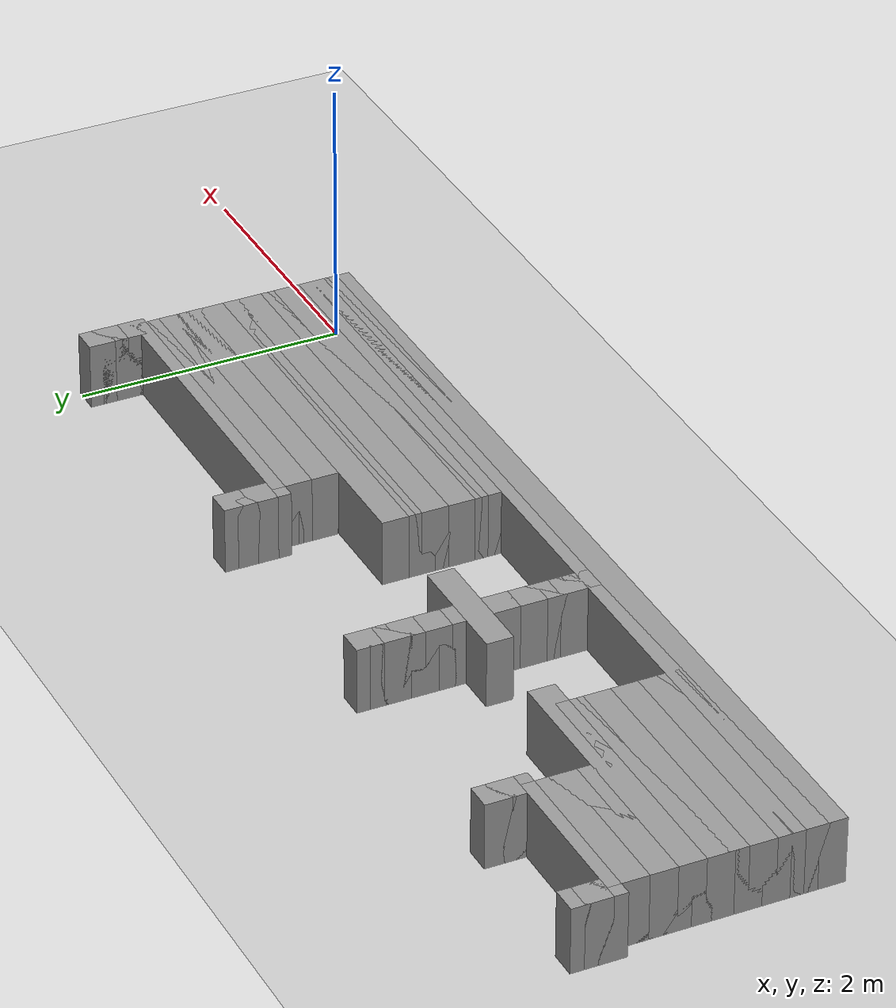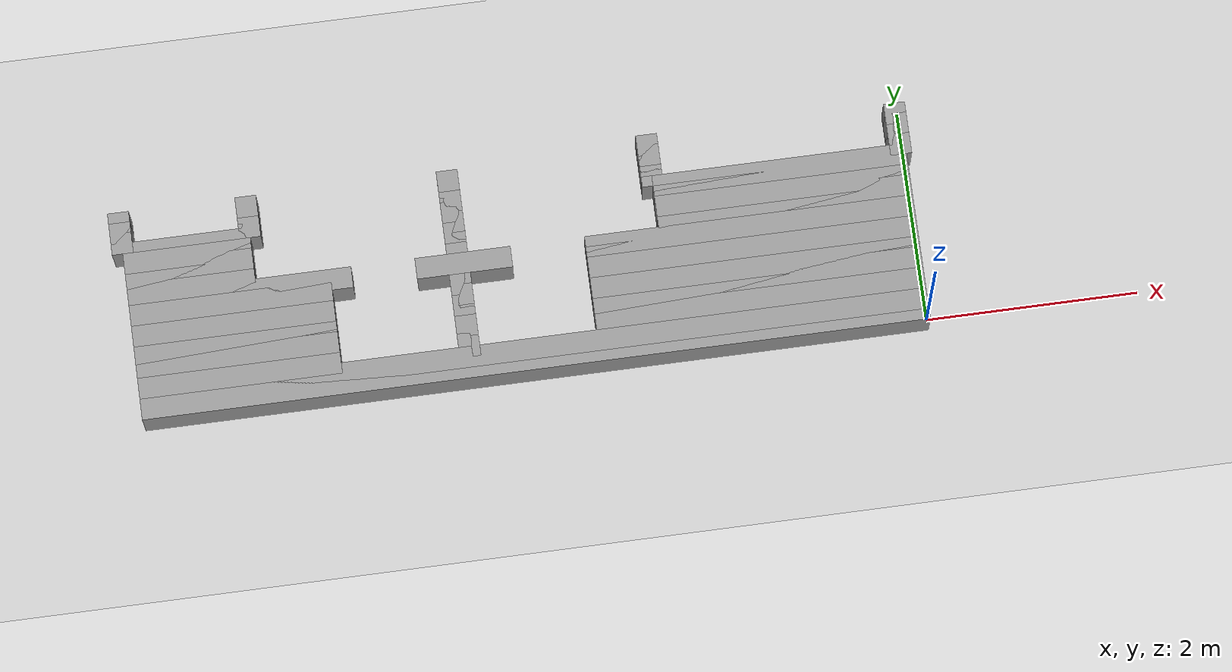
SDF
<sdf version="1.6">
 <world name="GridMap">
  <include><uri>model://sun</uri></include>
  <include><uri>model://ground_plane</uri></include>
  <model name="GridMap">
   <link name="Wall_(37.0,0.0)">
    <collision name="Wall_(37.0,0.0)_Collision">
     <geometry><box><size>7.4 0.2 0.5</size></box></geometry>
     <pose>-3.7 0.0 0.25 0 -0 0</pose>
    </collision>
    <inertial>
     <mass>0.5</mass>
     <pose>0 0.01 0 0 0 0</pose>
     <inertia><ixx>0.004</ixx><ixy>0.001</ixy><ixz>0</ixz><iyy>0.006</iyy><iyz>0</iyz><izz>0.007</izz></inertia>
    </inertial>
    <visual name="Wall_(37.0,0.0)_Visual">
     <geometry><box><size>7.4 0.2 0.5</size></box></geometry>
     <pose>-3.7 0.0 0.25 0 -0 0</pose>
     <material>
      <script><uri>file://media/materials/scripts/gazebo.material</uri><name>Gazebo/Grey</name></script>
      <ambient>1 1 1 1</ambient>
     </material>
     <meta><layer>0</layer></meta>
    </visual>
   </link>
   <link name="Wall_(37.0,1.0)">
    <collision name="Wall_(37.0,1.0)_Collision">
     <geometry><box><size>7.4 0.2 0.5</size></box></geometry>
     <pose>-3.7 0.1 0.25 0 -0 0</pose>
    </collision>
    <inertial>
     <mass>0.5</mass>
     <pose>0 0.01 0 0 0 0</pose>
     <inertia><ixx>0.004</ixx><ixy>0.001</ixy><ixz>0</ixz><iyy>0.006</iyy><iyz>0</iyz><izz>0.007</izz></inertia>
    </inertial>
    <visual name="Wall_(37.0,1.0)_Visual">
     <geometry><box><size>7.4 0.2 0.5</size></box></geometry>
     <pose>-3.7 0.1 0.25 0 -0 0</pose>
     <material>
      <script><uri>file://media/materials/scripts/gazebo.material</uri><name>Gazebo/Grey</name></script>
      <ambient>1 1 1 1</ambient>
     </material>
     <meta><layer>0</layer></meta>
    </visual>
   </link>
   <link name="Wall_(15.5,2.0)">
    <collision name="Wall_(15.5,2.0)_Collision">
     <geometry><box><size>3.1 0.2 0.5</size></box></geometry>
     <pose>-1.55 0.2 0.25 0 -0 0</pose>
    </collision>
    <inertial>
     <mass>0.5</mass>
     <pose>0 0.01 0 0 0 0</pose>
     <inertia><ixx>0.004</ixx><ixy>0.001</ixy><ixz>0</ixz><iyy>0.006</iyy><iyz>0</iyz><izz>0.007</izz></inertia>
    </inertial>
    <visual name="Wall_(15.5,2.0)_Visual">
     <geometry><box><size>3.1 0.2 0.5</size></box></geometry>
     <pose>-1.55 0.2 0.25 0 -0 0</pose>
     <material>
      <script><uri>file://media/materials/scripts/gazebo.material</uri><name>Gazebo/Grey</name></script>
      <ambient>1 1 1 1</ambient>
     </material>
     <meta><layer>0</layer></meta>
    </visual>
   </link>
   <link name="Wall_(43.0,2.0)">
    <collision name="Wall_(43.0,2.0)_Collision">
     <geometry><box><size>0.2 0.2 0.5</size></box></geometry>
     <pose>-4.3 0.2 0.25 0 -0 0</pose>
    </collision>
    <inertial>
     <mass>0.5</mass>
     <pose>0 0.01 0 0 0 0</pose>
     <inertia><ixx>0.004</ixx><ixy>0.001</ixy><ixz>0</ixz><iyy>0.006</iyy><iyz>0</iyz><izz>0.007</izz></inertia>
    </inertial>
    <visual name="Wall_(43.0,2.0)_Visual">
     <geometry><box><size>0.2 0.2 0.5</size></box></geometry>
     <pose>-4.3 0.2 0.25 0 -0 0</pose>
     <material>
      <script><uri>file://media/materials/scripts/gazebo.material</uri><name>Gazebo/Grey</name></script>
      <ambient>1 1 1 1</ambient>
     </material>
     <meta><layer>0</layer></meta>
    </visual>
   </link>
   <link name="Wall_(64.5,2.0)">
    <collision name="Wall_(64.5,2.0)_Collision">
     <geometry><box><size>1.9000000000000001 0.2 0.5</size></box></geometry>
     <pose>-6.45 0.2 0.25 0 -0 0</pose>
    </collision>
    <inertial>
     <mass>0.5</mass>
     <pose>0 0.01 0 0 0 0</pose>
     <inertia><ixx>0.004</ixx><ixy>0.001</ixy><ixz>0</ixz><iyy>0.006</iyy><iyz>0</iyz><izz>0.007</izz></inertia>
    </inertial>
    <visual name="Wall_(64.5,2.0)_Visual">
     <geometry><box><size>1.9000000000000001 0.2 0.5</size></box></geometry>
     <pose>-6.45 0.2 0.25 0 -0 0</pose>
     <material>
      <script><uri>file://media/materials/scripts/gazebo.material</uri><name>Gazebo/Grey</name></script>
      <ambient>1 1 1 1</ambient>
     </material>
     <meta><layer>0</layer></meta>
    </visual>
   </link>
   <link name="Wall_(15.5,3.0)">
    <collision name="Wall_(15.5,3.0)_Collision">
     <geometry><box><size>3.1 0.2 0.5</size></box></geometry>
     <pose>-1.55 0.30000000000000004 0.25 0 -0 0</pose>
    </collision>
    <inertial>
     <mass>0.5</mass>
     <pose>0 0.01 0 0 0 0</pose>
     <inertia><ixx>0.004</ixx><ixy>0.001</ixy><ixz>0</ixz><iyy>0.006</iyy><iyz>0</iyz><izz>0.007</izz></inertia>
    </inertial>
    <visual name="Wall_(15.5,3.0)_Visual">
     <geometry><box><size>3.1 0.2 0.5</size></box></geometry>
     <pose>-1.55 0.30000000000000004 0.25 0 -0 0</pose>
     <material>
      <script><uri>file://media/materials/scripts/gazebo.material</uri><name>Gazebo/Grey</name></script>
      <ambient>1 1 1 1</ambient>
     </material>
     <meta><layer>0</layer></meta>
    </visual>
   </link>
   <link name="Wall_(43.0,3.0)">
    <collision name="Wall_(43.0,3.0)_Collision">
     <geometry><box><size>0.2 0.2 0.5</size></box></geometry>
     <pose>-4.3 0.30000000000000004 0.25 0 -0 0</pose>
    </collision>
    <inertial>
     <mass>0.5</mass>
     <pose>0 0.01 0 0 0 0</pose>
     <inertia><ixx>0.004</ixx><ixy>0.001</ixy><ixz>0</ixz><iyy>0.006</iyy><iyz>0</iyz><izz>0.007</izz></inertia>
    </inertial>
    <visual name="Wall_(43.0,3.0)_Visual">
     <geometry><box><size>0.2 0.2 0.5</size></box></geometry>
     <pose>-4.3 0.30000000000000004 0.25 0 -0 0</pose>
     <material>
      <script><uri>file://media/materials/scripts/gazebo.material</uri><name>Gazebo/Grey</name></script>
      <ambient>1 1 1 1</ambient>
     </material>
     <meta><layer>0</layer></meta>
    </visual>
   </link>
   <link name="Wall_(64.5,3.0)">
    <collision name="Wall_(64.5,3.0)_Collision">
     <geometry><box><size>1.9000000000000001 0.2 0.5</size></box></geometry>
     <pose>-6.45 0.30000000000000004 0.25 0 -0 0</pose>
    </collision>
    <inertial>
     <mass>0.5</mass>
     <pose>0 0.01 0 0 0 0</pose>
     <inertia><ixx>0.004</ixx><ixy>0.001</ixy><ixz>0</ixz><iyy>0.006</iyy><iyz>0</iyz><izz>0.007</izz></inertia>
    </inertial>
    <visual name="Wall_(64.5,3.0)_Visual">
     <geometry><box><size>1.9000000000000001 0.2 0.5</size></box></geometry>
     <pose>-6.45 0.30000000000000004 0.25 0 -0 0</pose>
     <material>
      <script><uri>file://media/materials/scripts/gazebo.material</uri><name>Gazebo/Grey</name></script>
      <ambient>1 1 1 1</ambient>
     </material>
     <meta><layer>0</layer></meta>
    </visual>
   </link>
   <link name="Wall_(15.5,4.0)">
    <collision name="Wall_(15.5,4.0)_Collision">
     <geometry><box><size>3.1 0.2 0.5</size></box></geometry>
     <pose>-1.55 0.4 0.25 0 -0 0</pose>
    </collision>
    <inertial>
     <mass>0.5</mass>
     <pose>0 0.01 0 0 0 0</pose>
     <inertia><ixx>0.004</ixx><ixy>0.001</ixy><ixz>0</ixz><iyy>0.006</iyy><iyz>0</iyz><izz>0.007</izz></inertia>
    </inertial>
    <visual name="Wall_(15.5,4.0)_Visual">
     <geometry><box><size>3.1 0.2 0.5</size></box></geometry>
     <pose>-1.55 0.4 0.25 0 -0 0</pose>
     <material>
      <script><uri>file://media/materials/scripts/gazebo.material</uri><name>Gazebo/Grey</name></script>
      <ambient>1 1 1 1</ambient>
     </material>
     <meta><layer>0</layer></meta>
    </visual>
   </link>
   <link name="Wall_(43.0,4.0)">
    <collision name="Wall_(43.0,4.0)_Collision">
     <geometry><box><size>0.2 0.2 0.5</size></box></geometry>
     <pose>-4.3 0.4 0.25 0 -0 0</pose>
    </collision>
    <inertial>
     <mass>0.5</mass>
     <pose>0 0.01 0 0 0 0</pose>
     <inertia><ixx>0.004</ixx><ixy>0.001</ixy><ixz>0</ixz><iyy>0.006</iyy><iyz>0</iyz><izz>0.007</izz></inertia>
    </inertial>
    <visual name="Wall_(43.0,4.0)_Visual">
     <geometry><box><size>0.2 0.2 0.5</size></box></geometry>
     <pose>-4.3 0.4 0.25 0 -0 0</pose>
     <material>
      <script><uri>file://media/materials/scripts/gazebo.material</uri><name>Gazebo/Grey</name></script>
      <ambient>1 1 1 1</ambient>
     </material>
     <meta><layer>0</layer></meta>
    </visual>
   </link>
   <link name="Wall_(64.5,4.0)">
    <collision name="Wall_(64.5,4.0)_Collision">
     <geometry><box><size>1.9000000000000001 0.2 0.5</size></box></geometry>
     <pose>-6.45 0.4 0.25 0 -0 0</pose>
    </collision>
    <inertial>
     <mass>0.5</mass>
     <pose>0 0.01 0 0 0 0</pose>
     <inertia><ixx>0.004</ixx><ixy>0.001</ixy><ixz>0</ixz><iyy>0.006</iyy><iyz>0</iyz><izz>0.007</izz></inertia>
    </inertial>
    <visual name="Wall_(64.5,4.0)_Visual">
     <geometry><box><size>1.9000000000000001 0.2 0.5</size></box></geometry>
     <pose>-6.45 0.4 0.25 0 -0 0</pose>
     <material>
      <script><uri>file://media/materials/scripts/gazebo.material</uri><name>Gazebo/Grey</name></script>
      <ambient>1 1 1 1</ambient>
     </material>
     <meta><layer>0</layer></meta>
    </visual>
   </link>
   <link name="Wall_(15.5,5.0)">
    <collision name="Wall_(15.5,5.0)_Collision">
     <geometry><box><size>3.1 0.2 0.5</size></box></geometry>
     <pose>-1.55 0.5 0.25 0 -0 0</pose>
    </collision>
    <inertial>
     <mass>0.5</mass>
     <pose>0 0.01 0 0 0 0</pose>
     <inertia><ixx>0.004</ixx><ixy>0.001</ixy><ixz>0</ixz><iyy>0.006</iyy><iyz>0</iyz><izz>0.007</izz></inertia>
    </inertial>
    <visual name="Wall_(15.5,5.0)_Visual">
     <geometry><box><size>3.1 0.2 0.5</size></box></geometry>
     <pose>-1.55 0.5 0.25 0 -0 0</pose>
     <material>
      <script><uri>file://media/materials/scripts/gazebo.material</uri><name>Gazebo/Grey</name></script>
      <ambient>1 1 1 1</ambient>
     </material>
     <meta><layer>0</layer></meta>
    </visual>
   </link>
   <link name="Wall_(43.0,5.0)">
    <collision name="Wall_(43.0,5.0)_Collision">
     <geometry><box><size>0.2 0.2 0.5</size></box></geometry>
     <pose>-4.3 0.5 0.25 0 -0 0</pose>
    </collision>
    <inertial>
     <mass>0.5</mass>
     <pose>0 0.01 0 0 0 0</pose>
     <inertia><ixx>0.004</ixx><ixy>0.001</ixy><ixz>0</ixz><iyy>0.006</iyy><iyz>0</iyz><izz>0.007</izz></inertia>
    </inertial>
    <visual name="Wall_(43.0,5.0)_Visual">
     <geometry><box><size>0.2 0.2 0.5</size></box></geometry>
     <pose>-4.3 0.5 0.25 0 -0 0</pose>
     <material>
      <script><uri>file://media/materials/scripts/gazebo.material</uri><name>Gazebo/Grey</name></script>
      <ambient>1 1 1 1</ambient>
     </material>
     <meta><layer>0</layer></meta>
    </visual>
   </link>
   <link name="Wall_(64.5,5.0)">
    <collision name="Wall_(64.5,5.0)_Collision">
     <geometry><box><size>1.9000000000000001 0.2 0.5</size></box></geometry>
     <pose>-6.45 0.5 0.25 0 -0 0</pose>
    </collision>
    <inertial>
     <mass>0.5</mass>
     <pose>0 0.01 0 0 0 0</pose>
     <inertia><ixx>0.004</ixx><ixy>0.001</ixy><ixz>0</ixz><iyy>0.006</iyy><iyz>0</iyz><izz>0.007</izz></inertia>
    </inertial>
    <visual name="Wall_(64.5,5.0)_Visual">
     <geometry><box><size>1.9000000000000001 0.2 0.5</size></box></geometry>
     <pose>-6.45 0.5 0.25 0 -0 0</pose>
     <material>
      <script><uri>file://media/materials/scripts/gazebo.material</uri><name>Gazebo/Grey</name></script>
      <ambient>1 1 1 1</ambient>
     </material>
     <meta><layer>0</layer></meta>
    </visual>
   </link>
   <link name="Wall_(15.5,6.0)">
    <collision name="Wall_(15.5,6.0)_Collision">
     <geometry><box><size>3.1 0.2 0.5</size></box></geometry>
     <pose>-1.55 0.6000000000000001 0.25 0 -0 0</pose>
    </collision>
    <inertial>
     <mass>0.5</mass>
     <pose>0 0.01 0 0 0 0</pose>
     <inertia><ixx>0.004</ixx><ixy>0.001</ixy><ixz>0</ixz><iyy>0.006</iyy><iyz>0</iyz><izz>0.007</izz></inertia>
    </inertial>
    <visual name="Wall_(15.5,6.0)_Visual">
     <geometry><box><size>3.1 0.2 0.5</size></box></geometry>
     <pose>-1.55 0.6000000000000001 0.25 0 -0 0</pose>
     <material>
      <script><uri>file://media/materials/scripts/gazebo.material</uri><name>Gazebo/Grey</name></script>
      <ambient>1 1 1 1</ambient>
     </material>
     <meta><layer>0</layer></meta>
    </visual>
   </link>
   <link name="Wall_(43.0,6.0)">
    <collision name="Wall_(43.0,6.0)_Collision">
     <geometry><box><size>0.2 0.2 0.5</size></box></geometry>
     <pose>-4.3 0.6000000000000001 0.25 0 -0 0</pose>
    </collision>
    <inertial>
     <mass>0.5</mass>
     <pose>0 0.01 0 0 0 0</pose>
     <inertia><ixx>0.004</ixx><ixy>0.001</ixy><ixz>0</ixz><iyy>0.006</iyy><iyz>0</iyz><izz>0.007</izz></inertia>
    </inertial>
    <visual name="Wall_(43.0,6.0)_Visual">
     <geometry><box><size>0.2 0.2 0.5</size></box></geometry>
     <pose>-4.3 0.6000000000000001 0.25 0 -0 0</pose>
     <material>
      <script><uri>file://media/materials/scripts/gazebo.material</uri><name>Gazebo/Grey</name></script>
      <ambient>1 1 1 1</ambient>
     </material>
     <meta><layer>0</layer></meta>
    </visual>
   </link>
   <link name="Wall_(64.5,6.0)">
    <collision name="Wall_(64.5,6.0)_Collision">
     <geometry><box><size>1.9000000000000001 0.2 0.5</size></box></geometry>
     <pose>-6.45 0.6000000000000001 0.25 0 -0 0</pose>
    </collision>
    <inertial>
     <mass>0.5</mass>
     <pose>0 0.01 0 0 0 0</pose>
     <inertia><ixx>0.004</ixx><ixy>0.001</ixy><ixz>0</ixz><iyy>0.006</iyy><iyz>0</iyz><izz>0.007</izz></inertia>
    </inertial>
    <visual name="Wall_(64.5,6.0)_Visual">
     <geometry><box><size>1.9000000000000001 0.2 0.5</size></box></geometry>
     <pose>-6.45 0.6000000000000001 0.25 0 -0 0</pose>
     <material>
      <script><uri>file://media/materials/scripts/gazebo.material</uri><name>Gazebo/Grey</name></script>
      <ambient>1 1 1 1</ambient>
     </material>
     <meta><layer>0</layer></meta>
    </visual>
   </link>
   <link name="Wall_(15.5,7.0)">
    <collision name="Wall_(15.5,7.0)_Collision">
     <geometry><box><size>3.1 0.2 0.5</size></box></geometry>
     <pose>-1.55 0.7000000000000001 0.25 0 -0 0</pose>
    </collision>
    <inertial>
     <mass>0.5</mass>
     <pose>0 0.01 0 0 0 0</pose>
     <inertia><ixx>0.004</ixx><ixy>0.001</ixy><ixz>0</ixz><iyy>0.006</iyy><iyz>0</iyz><izz>0.007</izz></inertia>
    </inertial>
    <visual name="Wall_(15.5,7.0)_Visual">
     <geometry><box><size>3.1 0.2 0.5</size></box></geometry>
     <pose>-1.55 0.7000000000000001 0.25 0 -0 0</pose>
     <material>
      <script><uri>file://media/materials/scripts/gazebo.material</uri><name>Gazebo/Grey</name></script>
      <ambient>1 1 1 1</ambient>
     </material>
     <meta><layer>0</layer></meta>
    </visual>
   </link>
   <link name="Wall_(43.0,7.0)">
    <collision name="Wall_(43.0,7.0)_Collision">
     <geometry><box><size>0.2 0.2 0.5</size></box></geometry>
     <pose>-4.3 0.7000000000000001 0.25 0 -0 0</pose>
    </collision>
    <inertial>
     <mass>0.5</mass>
     <pose>0 0.01 0 0 0 0</pose>
     <inertia><ixx>0.004</ixx><ixy>0.001</ixy><ixz>0</ixz><iyy>0.006</iyy><iyz>0</iyz><izz>0.007</izz></inertia>
    </inertial>
    <visual name="Wall_(43.0,7.0)_Visual">
     <geometry><box><size>0.2 0.2 0.5</size></box></geometry>
     <pose>-4.3 0.7000000000000001 0.25 0 -0 0</pose>
     <material>
      <script><uri>file://media/materials/scripts/gazebo.material</uri><name>Gazebo/Grey</name></script>
      <ambient>1 1 1 1</ambient>
     </material>
     <meta><layer>0</layer></meta>
    </visual>
   </link>
   <link name="Wall_(64.5,7.0)">
    <collision name="Wall_(64.5,7.0)_Collision">
     <geometry><box><size>1.9000000000000001 0.2 0.5</size></box></geometry>
     <pose>-6.45 0.7000000000000001 0.25 0 -0 0</pose>
    </collision>
    <inertial>
     <mass>0.5</mass>
     <pose>0 0.01 0 0 0 0</pose>
     <inertia><ixx>0.004</ixx><ixy>0.001</ixy><ixz>0</ixz><iyy>0.006</iyy><iyz>0</iyz><izz>0.007</izz></inertia>
    </inertial>
    <visual name="Wall_(64.5,7.0)_Visual">
     <geometry><box><size>1.9000000000000001 0.2 0.5</size></box></geometry>
     <pose>-6.45 0.7000000000000001 0.25 0 -0 0</pose>
     <material>
      <script><uri>file://media/materials/scripts/gazebo.material</uri><name>Gazebo/Grey</name></script>
      <ambient>1 1 1 1</ambient>
     </material>
     <meta><layer>0</layer></meta>
    </visual>
   </link>
   <link name="Wall_(15.5,8.0)">
    <collision name="Wall_(15.5,8.0)_Collision">
     <geometry><box><size>3.1 0.2 0.5</size></box></geometry>
     <pose>-1.55 0.8 0.25 0 -0 0</pose>
    </collision>
    <inertial>
     <mass>0.5</mass>
     <pose>0 0.01 0 0 0 0</pose>
     <inertia><ixx>0.004</ixx><ixy>0.001</ixy><ixz>0</ixz><iyy>0.006</iyy><iyz>0</iyz><izz>0.007</izz></inertia>
    </inertial>
    <visual name="Wall_(15.5,8.0)_Visual">
     <geometry><box><size>3.1 0.2 0.5</size></box></geometry>
     <pose>-1.55 0.8 0.25 0 -0 0</pose>
     <material>
      <script><uri>file://media/materials/scripts/gazebo.material</uri><name>Gazebo/Grey</name></script>
      <ambient>1 1 1 1</ambient>
     </material>
     <meta><layer>0</layer></meta>
    </visual>
   </link>
   <link name="Wall_(43.0,8.0)">
    <collision name="Wall_(43.0,8.0)_Collision">
     <geometry><box><size>0.2 0.2 0.5</size></box></geometry>
     <pose>-4.3 0.8 0.25 0 -0 0</pose>
    </collision>
    <inertial>
     <mass>0.5</mass>
     <pose>0 0.01 0 0 0 0</pose>
     <inertia><ixx>0.004</ixx><ixy>0.001</ixy><ixz>0</ixz><iyy>0.006</iyy><iyz>0</iyz><izz>0.007</izz></inertia>
    </inertial>
    <visual name="Wall_(43.0,8.0)_Visual">
     <geometry><box><size>0.2 0.2 0.5</size></box></geometry>
     <pose>-4.3 0.8 0.25 0 -0 0</pose>
     <material>
      <script><uri>file://media/materials/scripts/gazebo.material</uri><name>Gazebo/Grey</name></script>
      <ambient>1 1 1 1</ambient>
     </material>
     <meta><layer>0</layer></meta>
    </visual>
   </link>
   <link name="Wall_(64.5,8.0)">
    <collision name="Wall_(64.5,8.0)_Collision">
     <geometry><box><size>1.9000000000000001 0.2 0.5</size></box></geometry>
     <pose>-6.45 0.8 0.25 0 -0 0</pose>
    </collision>
    <inertial>
     <mass>0.5</mass>
     <pose>0 0.01 0 0 0 0</pose>
     <inertia><ixx>0.004</ixx><ixy>0.001</ixy><ixz>0</ixz><iyy>0.006</iyy><iyz>0</iyz><izz>0.007</izz></inertia>
    </inertial>
    <visual name="Wall_(64.5,8.0)_Visual">
     <geometry><box><size>1.9000000000000001 0.2 0.5</size></box></geometry>
     <pose>-6.45 0.8 0.25 0 -0 0</pose>
     <material>
      <script><uri>file://media/materials/scripts/gazebo.material</uri><name>Gazebo/Grey</name></script>
      <ambient>1 1 1 1</ambient>
     </material>
     <meta><layer>0</layer></meta>
    </visual>
   </link>
   <link name="Wall_(15.5,9.0)">
    <collision name="Wall_(15.5,9.0)_Collision">
     <geometry><box><size>3.1 0.2 0.5</size></box></geometry>
     <pose>-1.55 0.9 0.25 0 -0 0</pose>
    </collision>
    <inertial>
     <mass>0.5</mass>
     <pose>0 0.01 0 0 0 0</pose>
     <inertia><ixx>0.004</ixx><ixy>0.001</ixy><ixz>0</ixz><iyy>0.006</iyy><iyz>0</iyz><izz>0.007</izz></inertia>
    </inertial>
    <visual name="Wall_(15.5,9.0)_Visual">
     <geometry><box><size>3.1 0.2 0.5</size></box></geometry>
     <pose>-1.55 0.9 0.25 0 -0 0</pose>
     <material>
      <script><uri>file://media/materials/scripts/gazebo.material</uri><name>Gazebo/Grey</name></script>
      <ambient>1 1 1 1</ambient>
     </material>
     <meta><layer>0</layer></meta>
    </visual>
   </link>
   <link name="Wall_(43.0,9.0)">
    <collision name="Wall_(43.0,9.0)_Collision">
     <geometry><box><size>0.2 0.2 0.5</size></box></geometry>
     <pose>-4.3 0.9 0.25 0 -0 0</pose>
    </collision>
    <inertial>
     <mass>0.5</mass>
     <pose>0 0.01 0 0 0 0</pose>
     <inertia><ixx>0.004</ixx><ixy>0.001</ixy><ixz>0</ixz><iyy>0.006</iyy><iyz>0</iyz><izz>0.007</izz></inertia>
    </inertial>
    <visual name="Wall_(43.0,9.0)_Visual">
     <geometry><box><size>0.2 0.2 0.5</size></box></geometry>
     <pose>-4.3 0.9 0.25 0 -0 0</pose>
     <material>
      <script><uri>file://media/materials/scripts/gazebo.material</uri><name>Gazebo/Grey</name></script>
      <ambient>1 1 1 1</ambient>
     </material>
     <meta><layer>0</layer></meta>
    </visual>
   </link>
   <link name="Wall_(64.5,9.0)">
    <collision name="Wall_(64.5,9.0)_Collision">
     <geometry><box><size>1.9000000000000001 0.2 0.5</size></box></geometry>
     <pose>-6.45 0.9 0.25 0 -0 0</pose>
    </collision>
    <inertial>
     <mass>0.5</mass>
     <pose>0 0.01 0 0 0 0</pose>
     <inertia><ixx>0.004</ixx><ixy>0.001</ixy><ixz>0</ixz><iyy>0.006</iyy><iyz>0</iyz><izz>0.007</izz></inertia>
    </inertial>
    <visual name="Wall_(64.5,9.0)_Visual">
     <geometry><box><size>1.9000000000000001 0.2 0.5</size></box></geometry>
     <pose>-6.45 0.9 0.25 0 -0 0</pose>
     <material>
      <script><uri>file://media/materials/scripts/gazebo.material</uri><name>Gazebo/Grey</name></script>
      <ambient>1 1 1 1</ambient>
     </material>
     <meta><layer>0</layer></meta>
    </visual>
   </link>
   <link name="Wall_(15.5,10.0)">
    <collision name="Wall_(15.5,10.0)_Collision">
     <geometry><box><size>3.1 0.2 0.5</size></box></geometry>
     <pose>-1.55 1.0 0.25 0 -0 0</pose>
    </collision>
    <inertial>
     <mass>0.5</mass>
     <pose>0 0.01 0 0 0 0</pose>
     <inertia><ixx>0.004</ixx><ixy>0.001</ixy><ixz>0</ixz><iyy>0.006</iyy><iyz>0</iyz><izz>0.007</izz></inertia>
    </inertial>
    <visual name="Wall_(15.5,10.0)_Visual">
     <geometry><box><size>3.1 0.2 0.5</size></box></geometry>
     <pose>-1.55 1.0 0.25 0 -0 0</pose>
     <material>
      <script><uri>file://media/materials/scripts/gazebo.material</uri><name>Gazebo/Grey</name></script>
      <ambient>1 1 1 1</ambient>
     </material>
     <meta><layer>0</layer></meta>
    </visual>
   </link>
   <link name="Wall_(42.5,10.0)">
    <collision name="Wall_(42.5,10.0)_Collision">
     <geometry><box><size>0.9 0.2 0.5</size></box></geometry>
     <pose>-4.25 1.0 0.25 0 -0 0</pose>
    </collision>
    <inertial>
     <mass>0.5</mass>
     <pose>0 0.01 0 0 0 0</pose>
     <inertia><ixx>0.004</ixx><ixy>0.001</ixy><ixz>0</ixz><iyy>0.006</iyy><iyz>0</iyz><izz>0.007</izz></inertia>
    </inertial>
    <visual name="Wall_(42.5,10.0)_Visual">
     <geometry><box><size>0.9 0.2 0.5</size></box></geometry>
     <pose>-4.25 1.0 0.25 0 -0 0</pose>
     <material>
      <script><uri>file://media/materials/scripts/gazebo.material</uri><name>Gazebo/Grey</name></script>
      <ambient>1 1 1 1</ambient>
     </material>
     <meta><layer>0</layer></meta>
    </visual>
   </link>
   <link name="Wall_(63.5,10.0)">
    <collision name="Wall_(63.5,10.0)_Collision">
     <geometry><box><size>2.1 0.2 0.5</size></box></geometry>
     <pose>-6.3500000000000005 1.0 0.25 0 -0 0</pose>
    </collision>
    <inertial>
     <mass>0.5</mass>
     <pose>0 0.01 0 0 0 0</pose>
     <inertia><ixx>0.004</ixx><ixy>0.001</ixy><ixz>0</ixz><iyy>0.006</iyy><iyz>0</iyz><izz>0.007</izz></inertia>
    </inertial>
    <visual name="Wall_(63.5,10.0)_Visual">
     <geometry><box><size>2.1 0.2 0.5</size></box></geometry>
     <pose>-6.3500000000000005 1.0 0.25 0 -0 0</pose>
     <material>
      <script><uri>file://media/materials/scripts/gazebo.material</uri><name>Gazebo/Grey</name></script>
      <ambient>1 1 1 1</ambient>
     </material>
     <meta><layer>0</layer></meta>
    </visual>
   </link>
   <link name="Wall_(12.0,11.0)">
    <collision name="Wall_(12.0,11.0)_Collision">
     <geometry><box><size>2.4000000000000004 0.2 0.5</size></box></geometry>
     <pose>-1.2000000000000002 1.1 0.25 0 -0 0</pose>
    </collision>
    <inertial>
     <mass>0.5</mass>
     <pose>0 0.01 0 0 0 0</pose>
     <inertia><ixx>0.004</ixx><ixy>0.001</ixy><ixz>0</ixz><iyy>0.006</iyy><iyz>0</iyz><izz>0.007</izz></inertia>
    </inertial>
    <visual name="Wall_(12.0,11.0)_Visual">
     <geometry><box><size>2.4000000000000004 0.2 0.5</size></box></geometry>
     <pose>-1.2000000000000002 1.1 0.25 0 -0 0</pose>
     <material>
      <script><uri>file://media/materials/scripts/gazebo.material</uri><name>Gazebo/Grey</name></script>
      <ambient>1 1 1 1</ambient>
     </material>
     <meta><layer>0</layer></meta>
    </visual>
   </link>
   <link name="Wall_(43.0,11.0)">
    <collision name="Wall_(43.0,11.0)_Collision">
     <geometry><box><size>0.2 0.2 0.5</size></box></geometry>
     <pose>-4.3 1.1 0.25 0 -0 0</pose>
    </collision>
    <inertial>
     <mass>0.5</mass>
     <pose>0 0.01 0 0 0 0</pose>
     <inertia><ixx>0.004</ixx><ixy>0.001</ixy><ixz>0</ixz><iyy>0.006</iyy><iyz>0</iyz><izz>0.007</izz></inertia>
    </inertial>
    <visual name="Wall_(43.0,11.0)_Visual">
     <geometry><box><size>0.2 0.2 0.5</size></box></geometry>
     <pose>-4.3 1.1 0.25 0 -0 0</pose>
     <material>
      <script><uri>file://media/materials/scripts/gazebo.material</uri><name>Gazebo/Grey</name></script>
      <ambient>1 1 1 1</ambient>
     </material>
     <meta><layer>0</layer></meta>
    </visual>
   </link>
   <link name="Wall_(68.0,11.0)">
    <collision name="Wall_(68.0,11.0)_Collision">
     <geometry><box><size>1.2000000000000002 0.2 0.5</size></box></geometry>
     <pose>-6.800000000000001 1.1 0.25 0 -0 0</pose>
    </collision>
    <inertial>
     <mass>0.5</mass>
     <pose>0 0.01 0 0 0 0</pose>
     <inertia><ixx>0.004</ixx><ixy>0.001</ixy><ixz>0</ixz><iyy>0.006</iyy><iyz>0</iyz><izz>0.007</izz></inertia>
    </inertial>
    <visual name="Wall_(68.0,11.0)_Visual">
     <geometry><box><size>1.2000000000000002 0.2 0.5</size></box></geometry>
     <pose>-6.800000000000001 1.1 0.25 0 -0 0</pose>
     <material>
      <script><uri>file://media/materials/scripts/gazebo.material</uri><name>Gazebo/Grey</name></script>
      <ambient>1 1 1 1</ambient>
     </material>
     <meta><layer>0</layer></meta>
    </visual>
   </link>
   <link name="Wall_(12.0,12.0)">
    <collision name="Wall_(12.0,12.0)_Collision">
     <geometry><box><size>2.4000000000000004 0.2 0.5</size></box></geometry>
     <pose>-1.2000000000000002 1.2000000000000002 0.25 0 -0 0</pose>
    </collision>
    <inertial>
     <mass>0.5</mass>
     <pose>0 0.01 0 0 0 0</pose>
     <inertia><ixx>0.004</ixx><ixy>0.001</ixy><ixz>0</ixz><iyy>0.006</iyy><iyz>0</iyz><izz>0.007</izz></inertia>
    </inertial>
    <visual name="Wall_(12.0,12.0)_Visual">
     <geometry><box><size>2.4000000000000004 0.2 0.5</size></box></geometry>
     <pose>-1.2000000000000002 1.2000000000000002 0.25 0 -0 0</pose>
     <material>
      <script><uri>file://media/materials/scripts/gazebo.material</uri><name>Gazebo/Grey</name></script>
      <ambient>1 1 1 1</ambient>
     </material>
     <meta><layer>0</layer></meta>
    </visual>
   </link>
   <link name="Wall_(43.0,12.0)">
    <collision name="Wall_(43.0,12.0)_Collision">
     <geometry><box><size>0.2 0.2 0.5</size></box></geometry>
     <pose>-4.3 1.2000000000000002 0.25 0 -0 0</pose>
    </collision>
    <inertial>
     <mass>0.5</mass>
     <pose>0 0.01 0 0 0 0</pose>
     <inertia><ixx>0.004</ixx><ixy>0.001</ixy><ixz>0</ixz><iyy>0.006</iyy><iyz>0</iyz><izz>0.007</izz></inertia>
    </inertial>
    <visual name="Wall_(43.0,12.0)_Visual">
     <geometry><box><size>0.2 0.2 0.5</size></box></geometry>
     <pose>-4.3 1.2000000000000002 0.25 0 -0 0</pose>
     <material>
      <script><uri>file://media/materials/scripts/gazebo.material</uri><name>Gazebo/Grey</name></script>
      <ambient>1 1 1 1</ambient>
     </material>
     <meta><layer>0</layer></meta>
    </visual>
   </link>
   <link name="Wall_(68.0,12.0)">
    <collision name="Wall_(68.0,12.0)_Collision">
     <geometry><box><size>1.2000000000000002 0.2 0.5</size></box></geometry>
     <pose>-6.800000000000001 1.2000000000000002 0.25 0 -0 0</pose>
    </collision>
    <inertial>
     <mass>0.5</mass>
     <pose>0 0.01 0 0 0 0</pose>
     <inertia><ixx>0.004</ixx><ixy>0.001</ixy><ixz>0</ixz><iyy>0.006</iyy><iyz>0</iyz><izz>0.007</izz></inertia>
    </inertial>
    <visual name="Wall_(68.0,12.0)_Visual">
     <geometry><box><size>1.2000000000000002 0.2 0.5</size></box></geometry>
     <pose>-6.800000000000001 1.2000000000000002 0.25 0 -0 0</pose>
     <material>
      <script><uri>file://media/materials/scripts/gazebo.material</uri><name>Gazebo/Grey</name></script>
      <ambient>1 1 1 1</ambient>
     </material>
     <meta><layer>0</layer></meta>
    </visual>
   </link>
   <link name="Wall_(12.0,13.0)">
    <collision name="Wall_(12.0,13.0)_Collision">
     <geometry><box><size>2.4000000000000004 0.2 0.5</size></box></geometry>
     <pose>-1.2000000000000002 1.3 0.25 0 -0 0</pose>
    </collision>
    <inertial>
     <mass>0.5</mass>
     <pose>0 0.01 0 0 0 0</pose>
     <inertia><ixx>0.004</ixx><ixy>0.001</ixy><ixz>0</ixz><iyy>0.006</iyy><iyz>0</iyz><izz>0.007</izz></inertia>
    </inertial>
    <visual name="Wall_(12.0,13.0)_Visual">
     <geometry><box><size>2.4000000000000004 0.2 0.5</size></box></geometry>
     <pose>-1.2000000000000002 1.3 0.25 0 -0 0</pose>
     <material>
      <script><uri>file://media/materials/scripts/gazebo.material</uri><name>Gazebo/Grey</name></script>
      <ambient>1 1 1 1</ambient>
     </material>
     <meta><layer>0</layer></meta>
    </visual>
   </link>
   <link name="Wall_(43.0,13.0)">
    <collision name="Wall_(43.0,13.0)_Collision">
     <geometry><box><size>0.2 0.2 0.5</size></box></geometry>
     <pose>-4.3 1.3 0.25 0 -0 0</pose>
    </collision>
    <inertial>
     <mass>0.5</mass>
     <pose>0 0.01 0 0 0 0</pose>
     <inertia><ixx>0.004</ixx><ixy>0.001</ixy><ixz>0</ixz><iyy>0.006</iyy><iyz>0</iyz><izz>0.007</izz></inertia>
    </inertial>
    <visual name="Wall_(43.0,13.0)_Visual">
     <geometry><box><size>0.2 0.2 0.5</size></box></geometry>
     <pose>-4.3 1.3 0.25 0 -0 0</pose>
     <material>
      <script><uri>file://media/materials/scripts/gazebo.material</uri><name>Gazebo/Grey</name></script>
      <ambient>1 1 1 1</ambient>
     </material>
     <meta><layer>0</layer></meta>
    </visual>
   </link>
   <link name="Wall_(68.0,13.0)">
    <collision name="Wall_(68.0,13.0)_Collision">
     <geometry><box><size>1.2000000000000002 0.2 0.5</size></box></geometry>
     <pose>-6.800000000000001 1.3 0.25 0 -0 0</pose>
    </collision>
    <inertial>
     <mass>0.5</mass>
     <pose>0 0.01 0 0 0 0</pose>
     <inertia><ixx>0.004</ixx><ixy>0.001</ixy><ixz>0</ixz><iyy>0.006</iyy><iyz>0</iyz><izz>0.007</izz></inertia>
    </inertial>
    <visual name="Wall_(68.0,13.0)_Visual">
     <geometry><box><size>1.2000000000000002 0.2 0.5</size></box></geometry>
     <pose>-6.800000000000001 1.3 0.25 0 -0 0</pose>
     <material>
      <script><uri>file://media/materials/scripts/gazebo.material</uri><name>Gazebo/Grey</name></script>
      <ambient>1 1 1 1</ambient>
     </material>
     <meta><layer>0</layer></meta>
    </visual>
   </link>
   <link name="Wall_(12.0,14.0)">
    <collision name="Wall_(12.0,14.0)_Collision">
     <geometry><box><size>2.4000000000000004 0.2 0.5</size></box></geometry>
     <pose>-1.2000000000000002 1.4000000000000001 0.25 0 -0 0</pose>
    </collision>
    <inertial>
     <mass>0.5</mass>
     <pose>0 0.01 0 0 0 0</pose>
     <inertia><ixx>0.004</ixx><ixy>0.001</ixy><ixz>0</ixz><iyy>0.006</iyy><iyz>0</iyz><izz>0.007</izz></inertia>
    </inertial>
    <visual name="Wall_(12.0,14.0)_Visual">
     <geometry><box><size>2.4000000000000004 0.2 0.5</size></box></geometry>
     <pose>-1.2000000000000002 1.4000000000000001 0.25 0 -0 0</pose>
     <material>
      <script><uri>file://media/materials/scripts/gazebo.material</uri><name>Gazebo/Grey</name></script>
      <ambient>1 1 1 1</ambient>
     </material>
     <meta><layer>0</layer></meta>
    </visual>
   </link>
   <link name="Wall_(43.0,14.0)">
    <collision name="Wall_(43.0,14.0)_Collision">
     <geometry><box><size>0.2 0.2 0.5</size></box></geometry>
     <pose>-4.3 1.4000000000000001 0.25 0 -0 0</pose>
    </collision>
    <inertial>
     <mass>0.5</mass>
     <pose>0 0.01 0 0 0 0</pose>
     <inertia><ixx>0.004</ixx><ixy>0.001</ixy><ixz>0</ixz><iyy>0.006</iyy><iyz>0</iyz><izz>0.007</izz></inertia>
    </inertial>
    <visual name="Wall_(43.0,14.0)_Visual">
     <geometry><box><size>0.2 0.2 0.5</size></box></geometry>
     <pose>-4.3 1.4000000000000001 0.25 0 -0 0</pose>
     <material>
      <script><uri>file://media/materials/scripts/gazebo.material</uri><name>Gazebo/Grey</name></script>
      <ambient>1 1 1 1</ambient>
     </material>
     <meta><layer>0</layer></meta>
    </visual>
   </link>
   <link name="Wall_(68.0,14.0)">
    <collision name="Wall_(68.0,14.0)_Collision">
     <geometry><box><size>1.2000000000000002 0.2 0.5</size></box></geometry>
     <pose>-6.800000000000001 1.4000000000000001 0.25 0 -0 0</pose>
    </collision>
    <inertial>
     <mass>0.5</mass>
     <pose>0 0.01 0 0 0 0</pose>
     <inertia><ixx>0.004</ixx><ixy>0.001</ixy><ixz>0</ixz><iyy>0.006</iyy><iyz>0</iyz><izz>0.007</izz></inertia>
    </inertial>
    <visual name="Wall_(68.0,14.0)_Visual">
     <geometry><box><size>1.2000000000000002 0.2 0.5</size></box></geometry>
     <pose>-6.800000000000001 1.4000000000000001 0.25 0 -0 0</pose>
     <material>
      <script><uri>file://media/materials/scripts/gazebo.material</uri><name>Gazebo/Grey</name></script>
      <ambient>1 1 1 1</ambient>
     </material>
     <meta><layer>0</layer></meta>
    </visual>
   </link>
   <link name="Wall_(12.0,15.0)">
    <collision name="Wall_(12.0,15.0)_Collision">
     <geometry><box><size>2.4000000000000004 0.2 0.5</size></box></geometry>
     <pose>-1.2000000000000002 1.5 0.25 0 -0 0</pose>
    </collision>
    <inertial>
     <mass>0.5</mass>
     <pose>0 0.01 0 0 0 0</pose>
     <inertia><ixx>0.004</ixx><ixy>0.001</ixy><ixz>0</ixz><iyy>0.006</iyy><iyz>0</iyz><izz>0.007</izz></inertia>
    </inertial>
    <visual name="Wall_(12.0,15.0)_Visual">
     <geometry><box><size>2.4000000000000004 0.2 0.5</size></box></geometry>
     <pose>-1.2000000000000002 1.5 0.25 0 -0 0</pose>
     <material>
      <script><uri>file://media/materials/scripts/gazebo.material</uri><name>Gazebo/Grey</name></script>
      <ambient>1 1 1 1</ambient>
     </material>
     <meta><layer>0</layer></meta>
    </visual>
   </link>
   <link name="Wall_(43.0,15.0)">
    <collision name="Wall_(43.0,15.0)_Collision">
     <geometry><box><size>0.2 0.2 0.5</size></box></geometry>
     <pose>-4.3 1.5 0.25 0 -0 0</pose>
    </collision>
    <inertial>
     <mass>0.5</mass>
     <pose>0 0.01 0 0 0 0</pose>
     <inertia><ixx>0.004</ixx><ixy>0.001</ixy><ixz>0</ixz><iyy>0.006</iyy><iyz>0</iyz><izz>0.007</izz></inertia>
    </inertial>
    <visual name="Wall_(43.0,15.0)_Visual">
     <geometry><box><size>0.2 0.2 0.5</size></box></geometry>
     <pose>-4.3 1.5 0.25 0 -0 0</pose>
     <material>
      <script><uri>file://media/materials/scripts/gazebo.material</uri><name>Gazebo/Grey</name></script>
      <ambient>1 1 1 1</ambient>
     </material>
     <meta><layer>0</layer></meta>
    </visual>
   </link>
   <link name="Wall_(68.0,15.0)">
    <collision name="Wall_(68.0,15.0)_Collision">
     <geometry><box><size>1.2000000000000002 0.2 0.5</size></box></geometry>
     <pose>-6.800000000000001 1.5 0.25 0 -0 0</pose>
    </collision>
    <inertial>
     <mass>0.5</mass>
     <pose>0 0.01 0 0 0 0</pose>
     <inertia><ixx>0.004</ixx><ixy>0.001</ixy><ixz>0</ixz><iyy>0.006</iyy><iyz>0</iyz><izz>0.007</izz></inertia>
    </inertial>
    <visual name="Wall_(68.0,15.0)_Visual">
     <geometry><box><size>1.2000000000000002 0.2 0.5</size></box></geometry>
     <pose>-6.800000000000001 1.5 0.25 0 -0 0</pose>
     <material>
      <script><uri>file://media/materials/scripts/gazebo.material</uri><name>Gazebo/Grey</name></script>
      <ambient>1 1 1 1</ambient>
     </material>
     <meta><layer>0</layer></meta>
    </visual>
   </link>
   <link name="Wall_(0.5,16.0)">
    <collision name="Wall_(0.5,16.0)_Collision">
     <geometry><box><size>0.2 0.2 0.5</size></box></geometry>
     <pose>-0.05 1.6 0.25 0 -0 0</pose>
    </collision>
    <inertial>
     <mass>0.5</mass>
     <pose>0 0.01 0 0 0 0</pose>
     <inertia><ixx>0.004</ixx><ixy>0.001</ixy><ixz>0</ixz><iyy>0.006</iyy><iyz>0</iyz><izz>0.007</izz></inertia>
    </inertial>
    <visual name="Wall_(0.5,16.0)_Visual">
     <geometry><box><size>0.2 0.2 0.5</size></box></geometry>
     <pose>-0.05 1.6 0.25 0 -0 0</pose>
     <material>
      <script><uri>file://media/materials/scripts/gazebo.material</uri><name>Gazebo/Grey</name></script>
      <ambient>1 1 1 1</ambient>
     </material>
     <meta><layer>0</layer></meta>
    </visual>
   </link>
   <link name="Wall_(24.0,16.0)">
    <collision name="Wall_(24.0,16.0)_Collision">
     <geometry><box><size>0.2 0.2 0.5</size></box></geometry>
     <pose>-2.4000000000000004 1.6 0.25 0 -0 0</pose>
    </collision>
    <inertial>
     <mass>0.5</mass>
     <pose>0 0.01 0 0 0 0</pose>
     <inertia><ixx>0.004</ixx><ixy>0.001</ixy><ixz>0</ixz><iyy>0.006</iyy><iyz>0</iyz><izz>0.007</izz></inertia>
    </inertial>
    <visual name="Wall_(24.0,16.0)_Visual">
     <geometry><box><size>0.2 0.2 0.5</size></box></geometry>
     <pose>-2.4000000000000004 1.6 0.25 0 -0 0</pose>
     <material>
      <script><uri>file://media/materials/scripts/gazebo.material</uri><name>Gazebo/Grey</name></script>
      <ambient>1 1 1 1</ambient>
     </material>
     <meta><layer>0</layer></meta>
    </visual>
   </link>
   <link name="Wall_(43.0,16.0)">
    <collision name="Wall_(43.0,16.0)_Collision">
     <geometry><box><size>0.2 0.2 0.5</size></box></geometry>
     <pose>-4.3 1.6 0.25 0 -0 0</pose>
    </collision>
    <inertial>
     <mass>0.5</mass>
     <pose>0 0.01 0 0 0 0</pose>
     <inertia><ixx>0.004</ixx><ixy>0.001</ixy><ixz>0</ixz><iyy>0.006</iyy><iyz>0</iyz><izz>0.007</izz></inertia>
    </inertial>
    <visual name="Wall_(43.0,16.0)_Visual">
     <geometry><box><size>0.2 0.2 0.5</size></box></geometry>
     <pose>-4.3 1.6 0.25 0 -0 0</pose>
     <material>
      <script><uri>file://media/materials/scripts/gazebo.material</uri><name>Gazebo/Grey</name></script>
      <ambient>1 1 1 1</ambient>
     </material>
     <meta><layer>0</layer></meta>
    </visual>
   </link>
   <link name="Wall_(62.0,16.0)">
    <collision name="Wall_(62.0,16.0)_Collision">
     <geometry><box><size>0.2 0.2 0.5</size></box></geometry>
     <pose>-6.2 1.6 0.25 0 -0 0</pose>
    </collision>
    <inertial>
     <mass>0.5</mass>
     <pose>0 0.01 0 0 0 0</pose>
     <inertia><ixx>0.004</ixx><ixy>0.001</ixy><ixz>0</ixz><iyy>0.006</iyy><iyz>0</iyz><izz>0.007</izz></inertia>
    </inertial>
    <visual name="Wall_(62.0,16.0)_Visual">
     <geometry><box><size>0.2 0.2 0.5</size></box></geometry>
     <pose>-6.2 1.6 0.25 0 -0 0</pose>
     <material>
      <script><uri>file://media/materials/scripts/gazebo.material</uri><name>Gazebo/Grey</name></script>
      <ambient>1 1 1 1</ambient>
     </material>
     <meta><layer>0</layer></meta>
    </visual>
   </link>
   <link name="Wall_(74.0,16.0)">
    <collision name="Wall_(74.0,16.0)_Collision">
     <geometry><box><size>0.2 0.2 0.5</size></box></geometry>
     <pose>-7.4 1.6 0.25 0 -0 0</pose>
    </collision>
    <inertial>
     <mass>0.5</mass>
     <pose>0 0.01 0 0 0 0</pose>
     <inertia><ixx>0.004</ixx><ixy>0.001</ixy><ixz>0</ixz><iyy>0.006</iyy><iyz>0</iyz><izz>0.007</izz></inertia>
    </inertial>
    <visual name="Wall_(74.0,16.0)_Visual">
     <geometry><box><size>0.2 0.2 0.5</size></box></geometry>
     <pose>-7.4 1.6 0.25 0 -0 0</pose>
     <material>
      <script><uri>file://media/materials/scripts/gazebo.material</uri><name>Gazebo/Grey</name></script>
      <ambient>1 1 1 1</ambient>
     </material>
     <meta><layer>0</layer></meta>
    </visual>
   </link>
   <link name="Wall_(0.5,17.0)">
    <collision name="Wall_(0.5,17.0)_Collision">
     <geometry><box><size>0.2 0.2 0.5</size></box></geometry>
     <pose>-0.05 1.7000000000000002 0.25 0 -0 0</pose>
    </collision>
    <inertial>
     <mass>0.5</mass>
     <pose>0 0.01 0 0 0 0</pose>
     <inertia><ixx>0.004</ixx><ixy>0.001</ixy><ixz>0</ixz><iyy>0.006</iyy><iyz>0</iyz><izz>0.007</izz></inertia>
    </inertial>
    <visual name="Wall_(0.5,17.0)_Visual">
     <geometry><box><size>0.2 0.2 0.5</size></box></geometry>
     <pose>-0.05 1.7000000000000002 0.25 0 -0 0</pose>
     <material>
      <script><uri>file://media/materials/scripts/gazebo.material</uri><name>Gazebo/Grey</name></script>
      <ambient>1 1 1 1</ambient>
     </material>
     <meta><layer>0</layer></meta>
    </visual>
   </link>
   <link name="Wall_(24.0,17.0)">
    <collision name="Wall_(24.0,17.0)_Collision">
     <geometry><box><size>0.2 0.2 0.5</size></box></geometry>
     <pose>-2.4000000000000004 1.7000000000000002 0.25 0 -0 0</pose>
    </collision>
    <inertial>
     <mass>0.5</mass>
     <pose>0 0.01 0 0 0 0</pose>
     <inertia><ixx>0.004</ixx><ixy>0.001</ixy><ixz>0</ixz><iyy>0.006</iyy><iyz>0</iyz><izz>0.007</izz></inertia>
    </inertial>
    <visual name="Wall_(24.0,17.0)_Visual">
     <geometry><box><size>0.2 0.2 0.5</size></box></geometry>
     <pose>-2.4000000000000004 1.7000000000000002 0.25 0 -0 0</pose>
     <material>
      <script><uri>file://media/materials/scripts/gazebo.material</uri><name>Gazebo/Grey</name></script>
      <ambient>1 1 1 1</ambient>
     </material>
     <meta><layer>0</layer></meta>
    </visual>
   </link>
   <link name="Wall_(43.0,17.0)">
    <collision name="Wall_(43.0,17.0)_Collision">
     <geometry><box><size>0.2 0.2 0.5</size></box></geometry>
     <pose>-4.3 1.7000000000000002 0.25 0 -0 0</pose>
    </collision>
    <inertial>
     <mass>0.5</mass>
     <pose>0 0.01 0 0 0 0</pose>
     <inertia><ixx>0.004</ixx><ixy>0.001</ixy><ixz>0</ixz><iyy>0.006</iyy><iyz>0</iyz><izz>0.007</izz></inertia>
    </inertial>
    <visual name="Wall_(43.0,17.0)_Visual">
     <geometry><box><size>0.2 0.2 0.5</size></box></geometry>
     <pose>-4.3 1.7000000000000002 0.25 0 -0 0</pose>
     <material>
      <script><uri>file://media/materials/scripts/gazebo.material</uri><name>Gazebo/Grey</name></script>
      <ambient>1 1 1 1</ambient>
     </material>
     <meta><layer>0</layer></meta>
    </visual>
   </link>
   <link name="Wall_(62.0,17.0)">
    <collision name="Wall_(62.0,17.0)_Collision">
     <geometry><box><size>0.2 0.2 0.5</size></box></geometry>
     <pose>-6.2 1.7000000000000002 0.25 0 -0 0</pose>
    </collision>
    <inertial>
     <mass>0.5</mass>
     <pose>0 0.01 0 0 0 0</pose>
     <inertia><ixx>0.004</ixx><ixy>0.001</ixy><ixz>0</ixz><iyy>0.006</iyy><iyz>0</iyz><izz>0.007</izz></inertia>
    </inertial>
    <visual name="Wall_(62.0,17.0)_Visual">
     <geometry><box><size>0.2 0.2 0.5</size></box></geometry>
     <pose>-6.2 1.7000000000000002 0.25 0 -0 0</pose>
     <material>
      <script><uri>file://media/materials/scripts/gazebo.material</uri><name>Gazebo/Grey</name></script>
      <ambient>1 1 1 1</ambient>
     </material>
     <meta><layer>0</layer></meta>
    </visual>
   </link>
   <link name="Wall_(74.0,17.0)">
    <collision name="Wall_(74.0,17.0)_Collision">
     <geometry><box><size>0.2 0.2 0.5</size></box></geometry>
     <pose>-7.4 1.7000000000000002 0.25 0 -0 0</pose>
    </collision>
    <inertial>
     <mass>0.5</mass>
     <pose>0 0.01 0 0 0 0</pose>
     <inertia><ixx>0.004</ixx><ixy>0.001</ixy><ixz>0</ixz><iyy>0.006</iyy><iyz>0</iyz><izz>0.007</izz></inertia>
    </inertial>
    <visual name="Wall_(74.0,17.0)_Visual">
     <geometry><box><size>0.2 0.2 0.5</size></box></geometry>
     <pose>-7.4 1.7000000000000002 0.25 0 -0 0</pose>
     <material>
      <script><uri>file://media/materials/scripts/gazebo.material</uri><name>Gazebo/Grey</name></script>
      <ambient>1 1 1 1</ambient>
     </material>
     <meta><layer>0</layer></meta>
    </visual>
   </link>
   <link name="Wall_(0.5,18.0)">
    <collision name="Wall_(0.5,18.0)_Collision">
     <geometry><box><size>0.2 0.2 0.5</size></box></geometry>
     <pose>-0.05 1.8 0.25 0 -0 0</pose>
    </collision>
    <inertial>
     <mass>0.5</mass>
     <pose>0 0.01 0 0 0 0</pose>
     <inertia><ixx>0.004</ixx><ixy>0.001</ixy><ixz>0</ixz><iyy>0.006</iyy><iyz>0</iyz><izz>0.007</izz></inertia>
    </inertial>
    <visual name="Wall_(0.5,18.0)_Visual">
     <geometry><box><size>0.2 0.2 0.5</size></box></geometry>
     <pose>-0.05 1.8 0.25 0 -0 0</pose>
     <material>
      <script><uri>file://media/materials/scripts/gazebo.material</uri><name>Gazebo/Grey</name></script>
      <ambient>1 1 1 1</ambient>
     </material>
     <meta><layer>0</layer></meta>
    </visual>
   </link>
   <link name="Wall_(24.0,18.0)">
    <collision name="Wall_(24.0,18.0)_Collision">
     <geometry><box><size>0.2 0.2 0.5</size></box></geometry>
     <pose>-2.4000000000000004 1.8 0.25 0 -0 0</pose>
    </collision>
    <inertial>
     <mass>0.5</mass>
     <pose>0 0.01 0 0 0 0</pose>
     <inertia><ixx>0.004</ixx><ixy>0.001</ixy><ixz>0</ixz><iyy>0.006</iyy><iyz>0</iyz><izz>0.007</izz></inertia>
    </inertial>
    <visual name="Wall_(24.0,18.0)_Visual">
     <geometry><box><size>0.2 0.2 0.5</size></box></geometry>
     <pose>-2.4000000000000004 1.8 0.25 0 -0 0</pose>
     <material>
      <script><uri>file://media/materials/scripts/gazebo.material</uri><name>Gazebo/Grey</name></script>
      <ambient>1 1 1 1</ambient>
     </material>
     <meta><layer>0</layer></meta>
    </visual>
   </link>
   <link name="Wall_(43.0,18.0)">
    <collision name="Wall_(43.0,18.0)_Collision">
     <geometry><box><size>0.2 0.2 0.5</size></box></geometry>
     <pose>-4.3 1.8 0.25 0 -0 0</pose>
    </collision>
    <inertial>
     <mass>0.5</mass>
     <pose>0 0.01 0 0 0 0</pose>
     <inertia><ixx>0.004</ixx><ixy>0.001</ixy><ixz>0</ixz><iyy>0.006</iyy><iyz>0</iyz><izz>0.007</izz></inertia>
    </inertial>
    <visual name="Wall_(43.0,18.0)_Visual">
     <geometry><box><size>0.2 0.2 0.5</size></box></geometry>
     <pose>-4.3 1.8 0.25 0 -0 0</pose>
     <material>
      <script><uri>file://media/materials/scripts/gazebo.material</uri><name>Gazebo/Grey</name></script>
      <ambient>1 1 1 1</ambient>
     </material>
     <meta><layer>0</layer></meta>
    </visual>
   </link>
   <link name="Wall_(62.0,18.0)">
    <collision name="Wall_(62.0,18.0)_Collision">
     <geometry><box><size>0.2 0.2 0.5</size></box></geometry>
     <pose>-6.2 1.8 0.25 0 -0 0</pose>
    </collision>
    <inertial>
     <mass>0.5</mass>
     <pose>0 0.01 0 0 0 0</pose>
     <inertia><ixx>0.004</ixx><ixy>0.001</ixy><ixz>0</ixz><iyy>0.006</iyy><iyz>0</iyz><izz>0.007</izz></inertia>
    </inertial>
    <visual name="Wall_(62.0,18.0)_Visual">
     <geometry><box><size>0.2 0.2 0.5</size></box></geometry>
     <pose>-6.2 1.8 0.25 0 -0 0</pose>
     <material>
      <script><uri>file://media/materials/scripts/gazebo.material</uri><name>Gazebo/Grey</name></script>
      <ambient>1 1 1 1</ambient>
     </material>
     <meta><layer>0</layer></meta>
    </visual>
   </link>
   <link name="Wall_(74.0,18.0)">
    <collision name="Wall_(74.0,18.0)_Collision">
     <geometry><box><size>0.2 0.2 0.5</size></box></geometry>
     <pose>-7.4 1.8 0.25 0 -0 0</pose>
    </collision>
    <inertial>
     <mass>0.5</mass>
     <pose>0 0.01 0 0 0 0</pose>
     <inertia><ixx>0.004</ixx><ixy>0.001</ixy><ixz>0</ixz><iyy>0.006</iyy><iyz>0</iyz><izz>0.007</izz></inertia>
    </inertial>
    <visual name="Wall_(74.0,18.0)_Visual">
     <geometry><box><size>0.2 0.2 0.5</size></box></geometry>
     <pose>-7.4 1.8 0.25 0 -0 0</pose>
     <material>
      <script><uri>file://media/materials/scripts/gazebo.material</uri><name>Gazebo/Grey</name></script>
      <ambient>1 1 1 1</ambient>
     </material>
     <meta><layer>0</layer></meta>
    </visual>
   </link>
   <link name="Wall_(0.5,19.0)">
    <collision name="Wall_(0.5,19.0)_Collision">
     <geometry><box><size>0.2 0.2 0.5</size></box></geometry>
     <pose>-0.05 1.9000000000000001 0.25 0 -0 0</pose>
    </collision>
    <inertial>
     <mass>0.5</mass>
     <pose>0 0.01 0 0 0 0</pose>
     <inertia><ixx>0.004</ixx><ixy>0.001</ixy><ixz>0</ixz><iyy>0.006</iyy><iyz>0</iyz><izz>0.007</izz></inertia>
    </inertial>
    <visual name="Wall_(0.5,19.0)_Visual">
     <geometry><box><size>0.2 0.2 0.5</size></box></geometry>
     <pose>-0.05 1.9000000000000001 0.25 0 -0 0</pose>
     <material>
      <script><uri>file://media/materials/scripts/gazebo.material</uri><name>Gazebo/Grey</name></script>
      <ambient>1 1 1 1</ambient>
     </material>
     <meta><layer>0</layer></meta>
    </visual>
   </link>
   <link name="Wall_(24.0,19.0)">
    <collision name="Wall_(24.0,19.0)_Collision">
     <geometry><box><size>0.2 0.2 0.5</size></box></geometry>
     <pose>-2.4000000000000004 1.9000000000000001 0.25 0 -0 0</pose>
    </collision>
    <inertial>
     <mass>0.5</mass>
     <pose>0 0.01 0 0 0 0</pose>
     <inertia><ixx>0.004</ixx><ixy>0.001</ixy><ixz>0</ixz><iyy>0.006</iyy><iyz>0</iyz><izz>0.007</izz></inertia>
    </inertial>
    <visual name="Wall_(24.0,19.0)_Visual">
     <geometry><box><size>0.2 0.2 0.5</size></box></geometry>
     <pose>-2.4000000000000004 1.9000000000000001 0.25 0 -0 0</pose>
     <material>
      <script><uri>file://media/materials/scripts/gazebo.material</uri><name>Gazebo/Grey</name></script>
      <ambient>1 1 1 1</ambient>
     </material>
     <meta><layer>0</layer></meta>
    </visual>
   </link>
   <static>1</static>
  </model>
 </world>
</sdf>
